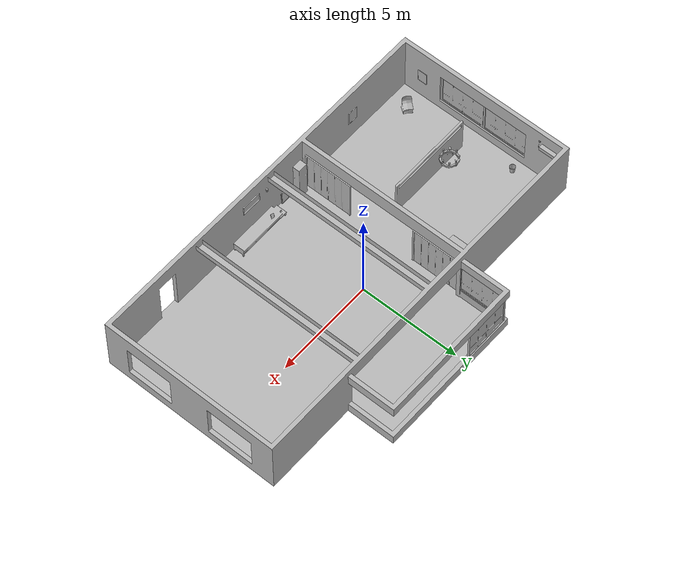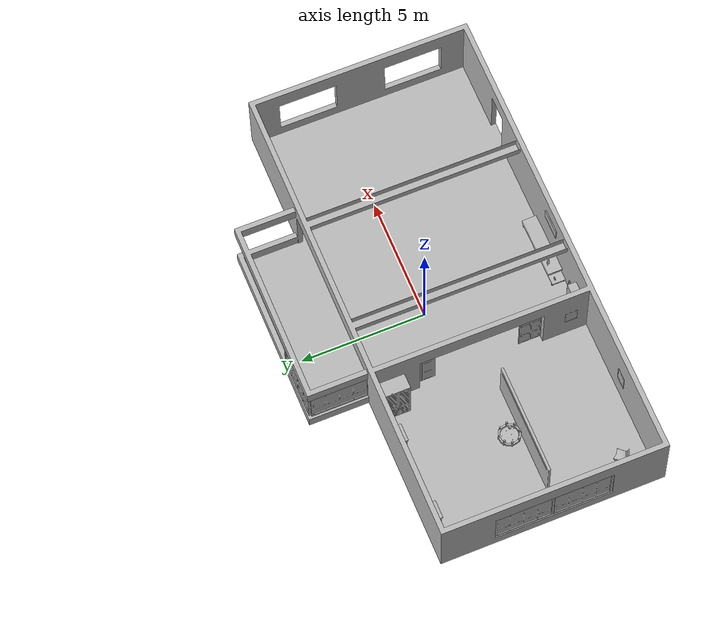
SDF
<sdf version="1.7">
 <world name="default">
  <model name="AirconditionerA_01_001">
   <static>1</static>
   <frame name="aws_robomaker_residential_AirconditionerA_01::__model__" attached_to="aws_robomaker_residential_AirconditionerA_01::link">
    <pose relative_to="__model__">0 0 0 0 -0 0</pose>
   </frame>
   <link name="aws_robomaker_residential_AirconditionerA_01::link">
    <inertial><mass>1</mass></inertial>
    <collision name="collision">
     <geometry>
      <mesh>
       <uri>model://aws_robomaker_residential_AirconditionerA_01/meshes/aws_AirconditionerA_01_collision.DAE</uri>
       <scale>1 1 1</scale>
      </mesh>
     </geometry>
    </collision>
    <visual name="visual">
     <geometry>
      <mesh>
       <uri>model://aws_robomaker_residential_AirconditionerA_01/meshes/aws_AirconditionerA_01_visual.DAE</uri>
      </mesh>
     </geometry>
     <meta><layer>1</layer></meta>
    </visual>
    <pose relative_to="aws_robomaker_residential_AirconditionerA_01::__model__">0 0 0 0 -0 0</pose>
   </link>
   <static>1</static>
   <pose>-9.19941 2.41123 2.08454 0 -0 0</pose>
  </model>
  <model name="AirconditionerB_01_001">
   <static>1</static>
   <frame name="aws_robomaker_residential_AirconditionerB_01::__model__" attached_to="aws_robomaker_residential_AirconditionerB_01::link">
    <pose relative_to="__model__">0 0 0 0 -0 0</pose>
   </frame>
   <link name="aws_robomaker_residential_AirconditionerB_01::link">
    <inertial><mass>1</mass></inertial>
    <collision name="collision">
     <geometry>
      <mesh>
       <uri>model://aws_robomaker_residential_AirconditionerB_01/meshes/aws_AirconditionerB_01_collision.DAE</uri>
       <scale>1 1 1</scale>
      </mesh>
     </geometry>
    </collision>
    <visual name="visual">
     <geometry>
      <mesh>
       <uri>model://aws_robomaker_residential_AirconditionerB_01/meshes/aws_AirconditionerB_01_visual.DAE</uri>
      </mesh>
     </geometry>
     <meta><layer>1</layer></meta>
    </visual>
    <pose relative_to="aws_robomaker_residential_AirconditionerB_01::__model__">0 0 0 0 -0 0</pose>
   </link>
   <pose>-2.00466 -5.22661 0.003485 0 -0 0</pose>
  </model>
  <model name="NightStand_01_001">
   <static>1</static>
   <frame name="aws_robomaker_residential_NightStand_01::__model__" attached_to="aws_robomaker_residential_NightStand_01::link">
    <pose relative_to="__model__">0 0 0 0 -0 0</pose>
   </frame>
   <link name="aws_robomaker_residential_NightStand_01::link">
    <inertial>
     <mass>13.6</mass>
     <inertia><ixx>0.6165</ixx><ixy>0</ixy><ixz>0</ixz><iyy>1.29664</iyy><iyz>0</iyz><izz>0.7706</izz></inertia>
    </inertial>
    <collision name="collision">
     <geometry>
      <mesh>
       <uri>model://aws_robomaker_residential_NightStand_01/meshes/aws_NightStand_01_collision.DAE</uri>
       <scale>1 1 1</scale>
      </mesh>
     </geometry>
    </collision>
    <visual name="visual">
     <geometry>
      <mesh><uri>model://aws_robomaker_residential_NightStand_01/meshes/aws_NightStand_01_visual.DAE</uri></mesh>
     </geometry>
     <meta><layer>1</layer></meta>
    </visual>
    <pose relative_to="aws_robomaker_residential_NightStand_01::__model__">0 0 0 0 -0 0</pose>
   </link>
   <static>1</static>
   <pose>-7.72551 2.86042 0.005258 -2e-06 0 0</pose>
  </model>
  <model name="NightStand_01_002">
   <static>1</static>
   <frame name="aws_robomaker_residential_NightStand_01::__model__" attached_to="aws_robomaker_residential_NightStand_01::link">
    <pose relative_to="__model__">0 0 0 0 -0 0</pose>
   </frame>
   <link name="aws_robomaker_residential_NightStand_01::link">
    <inertial>
     <mass>13.6</mass>
     <inertia><ixx>0.6165</ixx><ixy>0</ixy><ixz>0</ixz><iyy>1.29664</iyy><iyz>0</iyz><izz>0.7706</izz></inertia>
    </inertial>
    <collision name="collision">
     <geometry>
      <mesh>
       <uri>model://aws_robomaker_residential_NightStand_01/meshes/aws_NightStand_01_collision.DAE</uri>
       <scale>1 1 1</scale>
      </mesh>
     </geometry>
    </collision>
    <visual name="visual">
     <geometry>
      <mesh><uri>model://aws_robomaker_residential_NightStand_01/meshes/aws_NightStand_01_visual.DAE</uri></mesh>
     </geometry>
     <meta><layer>1</layer></meta>
    </visual>
    <pose relative_to="aws_robomaker_residential_NightStand_01::__model__">0 0 0 0 -0 0</pose>
   </link>
   <static>1</static>
   <pose>-4.40734 2.86042 0.005256 0 2e-06 0</pose>
  </model>
  <model name="ChairD_01_003">
   <static>1</static>
   <frame name="aws_robomaker_residential_ChairD_01::__model__" attached_to="aws_robomaker_residential_ChairD_01::link">
    <pose relative_to="__model__">0 0 0 0 -0 0</pose>
   </frame>
   <link name="aws_robomaker_residential_ChairD_01::link">
    <inertial>
     <mass>4.5</mass>
     <inertia><ixy>0</ixy><ixz>0</ixz><iyz>0</iyz><ixx>0.217</ixx><iyy>0.217</iyy><izz>0.067</izz></inertia>
    </inertial>
    <collision name="collision">
     <geometry>
      <mesh>
       <uri>model://aws_robomaker_residential_ChairD_01/meshes/aws_ChairD_01_collision.DAE</uri>
       <scale>1 1 1</scale>
      </mesh>
     </geometry>
    </collision>
    <visual name="visual">
     <geometry>
      <mesh><uri>model://aws_robomaker_residential_ChairD_01/meshes/aws_ChairD_01_visual.DAE</uri></mesh>
     </geometry>
     <meta><layer>1</layer></meta>
    </visual>
    <pose relative_to="aws_robomaker_residential_ChairD_01::__model__">0 0 0 0 -0 0</pose>
   </link>
   <pose>-8.27078 -4.50446 0 0 -0 0.869673</pose>
  </model>
  <model name="Chandelier_01_002">
   <static>1</static>
   <frame name="aws_robomaker_residential_Chandelier_01::__model__" attached_to="aws_robomaker_residential_Chandelier_01::link">
    <pose relative_to="__model__">0 0 0 0 -0 0</pose>
   </frame>
   <link name="aws_robomaker_residential_Chandelier_01::link">
    <inertial><mass>1</mass></inertial>
    <collision name="collision">
     <geometry>
      <mesh>
       <uri>model://aws_robomaker_residential_Chandelier_01/meshes/aws_Chandelier_01_collision.DAE</uri>
       <scale>1 1 1</scale>
      </mesh>
     </geometry>
    </collision>
    <visual name="visual">
     <geometry>
      <mesh><uri>model://aws_robomaker_residential_Chandelier_01/meshes/aws_Chandelier_01_visual.DAE</uri></mesh>
     </geometry>
     <meta><layer>2</layer></meta>
    </visual>
    <pose relative_to="aws_robomaker_residential_Chandelier_01::__model__">0 0 0 0 -0 0</pose>
   </link>
   <static>1</static>
   <pose>-6.45106 -0.69204 1.81 0 -0 0</pose>
  </model>
  <model name="FoldingDoor_01_001">
   <static>1</static>
   <frame name="aws_robomaker_residential_FoldingDoor_01::__model__" attached_to="aws_robomaker_residential_FoldingDoor_01::link">
    <pose relative_to="__model__">0 0 0 0 -0 0</pose>
   </frame>
   <link name="aws_robomaker_residential_FoldingDoor_01::link">
    <inertial><mass>1</mass></inertial>
    <collision name="collision">
     <geometry>
      <mesh>
       <uri>model://aws_robomaker_residential_FoldingDoor_01/meshes/aws_FoldingDoor_01_collision.DAE</uri>
       <scale>1 1 1</scale>
      </mesh>
     </geometry>
    </collision>
    <visual name="visual">
     <geometry>
      <mesh><uri>model://aws_robomaker_residential_FoldingDoor_01/meshes/aws_FoldingDoor_01_visual.DAE</uri></mesh>
     </geometry>
     <meta><layer>2</layer></meta>
    </visual>
    <pose relative_to="aws_robomaker_residential_FoldingDoor_01::__model__">0 0 0 0 -0 0</pose>
   </link>
   <static>1</static>
   <pose>-2.4611 1.84422 0.041881 0 -0 0</pose>
  </model>
  <model name="FoldingDoor_01_002">
   <static>1</static>
   <frame name="aws_robomaker_residential_FoldingDoor_01::__model__" attached_to="aws_robomaker_residential_FoldingDoor_01::link">
    <pose relative_to="__model__">0 0 0 0 -0 0</pose>
   </frame>
   <link name="aws_robomaker_residential_FoldingDoor_01::link">
    <inertial><mass>1</mass></inertial>
    <collision name="collision">
     <geometry>
      <mesh>
       <uri>model://aws_robomaker_residential_FoldingDoor_01/meshes/aws_FoldingDoor_01_collision.DAE</uri>
       <scale>1 1 1</scale>
      </mesh>
     </geometry>
    </collision>
    <visual name="visual">
     <geometry>
      <mesh><uri>model://aws_robomaker_residential_FoldingDoor_01/meshes/aws_FoldingDoor_01_visual.DAE</uri></mesh>
     </geometry>
     <meta><layer>2</layer></meta>
    </visual>
    <pose relative_to="aws_robomaker_residential_FoldingDoor_01::__model__">0 0 0 0 -0 0</pose>
   </link>
   <static>1</static>
   <pose>-2.4611 -4.05332 0.041881 0 -0 0</pose>
  </model>
  <model name="HouseWallB_01_001">
   <static>1</static>
   <frame name="aws_robomaker_residential_HouseWallB_01::__model__" attached_to="aws_robomaker_residential_HouseWallB_01::link">
    <pose relative_to="__model__">0 0 0 0 -0 0</pose>
   </frame>
   <link name="aws_robomaker_residential_HouseWallB_01::link">
    <inertial><mass>1</mass></inertial>
    <collision name="collision">
     <geometry>
      <mesh>
       <uri>model://aws_robomaker_residential_HouseWallB_01/meshes/aws_HouseWallB_01_collision.DAE</uri>
       <scale>1 1 1</scale>
      </mesh>
     </geometry>
    </collision>
    <visual name="visual">
     <geometry>
      <mesh><uri>model://aws_robomaker_residential_HouseWallB_01/meshes/aws_HouseWallB_01_visual.DAE</uri></mesh>
     </geometry>
     <meta><layer>2</layer></meta>
    </visual>
    <pose relative_to="aws_robomaker_residential_HouseWallB_01::__model__">0 0 0 0 -0 0</pose>
   </link>
   <static>1</static>
  </model>
  <model name="FloorB_01_001">
   <static>1</static>
   <frame name="aws_robomaker_residential_FloorB_01::__model__" attached_to="aws_robomaker_residential_FloorB_01::link">
    <pose relative_to="__model__">0 0 0 0 -0 0</pose>
   </frame>
   <link name="aws_robomaker_residential_FloorB_01::link">
    <inertial><mass>100</mass></inertial>
    <collision name="collision">
     <geometry>
      <mesh>
       <uri>model://aws_robomaker_residential_FloorB_01/meshes/aws_FloorB_01_collision.DAE</uri>
       <scale>1 1 0.9</scale>
      </mesh>
     </geometry>
     <surface><friction><ode><mu>100</mu><mu2>50</mu2></ode></friction></surface>
    </collision>
    <visual name="visual">
     <geometry>
      <mesh><uri>model://aws_robomaker_residential_FloorB_01/meshes/aws_FloorB_01_visual.DAE</uri></mesh>
     </geometry>
     <meta><layer>1</layer></meta>
    </visual>
    <pose relative_to="aws_robomaker_residential_FloorB_01::__model__">0 0 0 0 -0 0</pose>
   </link>
   <static>1</static>
  </model>
  <model name="LightC_01_002">
   <static>1</static>
   <frame name="aws_robomaker_residential_LightC_01::__model__" attached_to="aws_robomaker_residential_LightC_01::link">
    <pose relative_to="__model__">0 0 0 0 -0 0</pose>
   </frame>
   <link name="aws_robomaker_residential_LightC_01::link">
    <inertial><mass>1</mass></inertial>
    <collision name="collision">
     <geometry>
      <mesh>
       <uri>model://aws_robomaker_residential_LightC_01/meshes/aws_LightC_01_collision.DAE</uri>
       <scale>1 1 1</scale>
      </mesh>
     </geometry>
    </collision>
    <visual name="visual">
     <geometry>
      <mesh><uri>model://aws_robomaker_residential_LightC_01/meshes/aws_LightC_01_visual.DAE</uri></mesh>
     </geometry>
     <meta><layer>2</layer></meta>
    </visual>
    <pose relative_to="aws_robomaker_residential_LightC_01::__model__">0 0 0 0 -0 0</pose>
   </link>
   <static>1</static>
   <pose>-0.138245 -5.44437 2 0 -0 0</pose>
  </model>
  <model name="PortraitA_01">
   <static>1</static>
   <frame name="aws_robomaker_residential_PortraitA_01::__model__" attached_to="aws_robomaker_residential_PortraitA_01::link">
    <pose relative_to="__model__">0 0 0 0 -0 0</pose>
   </frame>
   <link name="aws_robomaker_residential_PortraitA_01::link">
    <inertial><mass>1</mass></inertial>
    <collision name="collision">
     <geometry>
      <mesh>
       <uri>model://aws_robomaker_residential_PortraitA_01/meshes/aws_PortraitA_01_collision.DAE</uri>
       <scale>1 1 1</scale>
      </mesh>
     </geometry>
    </collision>
    <visual name="visual">
     <geometry>
      <mesh><uri>model://aws_robomaker_residential_PortraitA_01/meshes/aws_PortraitA_01_visual.DAE</uri></mesh>
     </geometry>
     <meta><layer>2</layer></meta>
    </visual>
    <pose relative_to="aws_robomaker_residential_PortraitA_01::__model__">0 0 0 0 -0 0</pose>
   </link>
   <static>1</static>
   <pose>-2.71236 -4.81754 1 0 -0 1.5668</pose>
  </model>
  <model name="PortraitB_01">
   <static>1</static>
   <frame name="aws_robomaker_residential_PortraitB_01::__model__" attached_to="aws_robomaker_residential_PortraitB_01::link">
    <pose relative_to="__model__">0 0 0 0 -0 0</pose>
   </frame>
   <link name="aws_robomaker_residential_PortraitB_01::link">
    <inertial><mass>1</mass></inertial>
    <collision name="collision">
     <geometry>
      <mesh>
       <uri>model://aws_robomaker_residential_PortraitB_01/meshes/aws_PortraitB_01_collision.DAE</uri>
       <scale>1 1 1</scale>
      </mesh>
     </geometry>
    </collision>
    <visual name="visual">
     <geometry>
      <mesh><uri>model://aws_robomaker_residential_PortraitB_01/meshes/aws_PortraitB_01_visual.DAE</uri></mesh>
     </geometry>
     <meta><layer>2</layer></meta>
    </visual>
    <pose relative_to="aws_robomaker_residential_PortraitB_01::__model__">0 0 0 0 -0 0</pose>
   </link>
   <static>1</static>
   <pose>-1.27968 -5.42963 0 -0.076901 0 -3.11672</pose>
  </model>
  <model name="PortraitC_01">
   <static>1</static>
   <frame name="aws_robomaker_residential_PortraitC_01::__model__" attached_to="aws_robomaker_residential_PortraitC_01::link">
    <pose relative_to="__model__">0 0 0 0 -0 0</pose>
   </frame>
   <link name="aws_robomaker_residential_PortraitC_01::link">
    <inertial><mass>1</mass></inertial>
    <collision name="collision">
     <geometry>
      <mesh>
       <uri>model://aws_robomaker_residential_PortraitC_01/meshes/aws_PortraitC_01_collision.DAE</uri>
       <scale>1 1 1</scale>
      </mesh>
     </geometry>
    </collision>
    <visual name="visual">
     <geometry>
      <mesh><uri>model://aws_robomaker_residential_PortraitC_01/meshes/aws_PortraitC_01_visual.DAE</uri></mesh>
     </geometry>
     <meta><layer>2</layer></meta>
    </visual>
    <pose relative_to="aws_robomaker_residential_PortraitC_01::__model__">0 0 0 0 -0 0</pose>
   </link>
   <static>1</static>
   <pose>-9.2949 -4.52608 1 0 -0 1.55473</pose>
  </model>
  <model name="PortraitD_01">
   <static>1</static>
   <frame name="aws_robomaker_residential_PortraitD_01::__model__" attached_to="aws_robomaker_residential_PortraitD_01::link">
    <pose relative_to="__model__">0 0 0 0 -0 0</pose>
   </frame>
   <link name="aws_robomaker_residential_PortraitD_01::link">
    <inertial><mass>1.5</mass></inertial>
    <collision name="collision">
     <geometry>
      <mesh>
       <uri>model://aws_robomaker_residential_PortraitD_01/meshes/aws_PortraitD_01_collision.DAE</uri>
       <scale>1 1 1</scale>
      </mesh>
     </geometry>
    </collision>
    <visual name="visual">
     <geometry>
      <mesh><uri>model://aws_robomaker_residential_PortraitD_01/meshes/aws_PortraitD_01_visual.DAE</uri></mesh>
     </geometry>
     <meta><layer>2</layer></meta>
    </visual>
    <pose relative_to="aws_robomaker_residential_PortraitD_01::__model__">0 0 0 0 -0 0</pose>
   </link>
   <static>1</static>
   <pose>0.789763 -5.47872 1.8 0 -0 3.13853</pose>
  </model>
  <model name="PortraitE_01">
   <static>1</static>
   <frame name="aws_robomaker_residential_PortraitE_01::__model__" attached_to="aws_robomaker_residential_PortraitE_01::link">
    <pose relative_to="__model__">0 0 0 0 -0 0</pose>
   </frame>
   <link name="aws_robomaker_residential_PortraitE_01::link">
    <inertial><mass>1</mass></inertial>
    <collision name="collision">
     <geometry>
      <mesh>
       <uri>model://aws_robomaker_residential_PortraitE_01/meshes/aws_PortraitE_01_collision.DAE</uri>
       <scale>1 1 1</scale>
      </mesh>
     </geometry>
    </collision>
    <visual name="visual">
     <geometry>
      <mesh><uri>model://aws_robomaker_residential_PortraitE_01/meshes/aws_PortraitE_01_visual.DAE</uri></mesh>
     </geometry>
     <meta><layer>2</layer></meta>
    </visual>
    <pose relative_to="aws_robomaker_residential_PortraitE_01::__model__">0 0 0 0 -0 0</pose>
   </link>
   <static>1</static>
   <pose>-5.77309 -5.49247 1 0 -0 3.13263</pose>
  </model>
  <model name="PortraitE_02">
   <static>1</static>
   <frame name="aws_robomaker_residential_PortraitE_02::__model__" attached_to="aws_robomaker_residential_PortraitE_02::link">
    <pose relative_to="__model__">0 0 0 0 -0 0</pose>
   </frame>
   <link name="aws_robomaker_residential_PortraitE_02::link">
    <inertial><mass>1</mass></inertial>
    <collision name="collision">
     <geometry>
      <mesh>
       <uri>model://aws_robomaker_residential_PortraitE_02/meshes/aws_PortraitE_01_collision.DAE</uri>
       <scale>1 1 1</scale>
      </mesh>
     </geometry>
    </collision>
    <visual name="visual">
     <geometry>
      <mesh><uri>model://aws_robomaker_residential_PortraitE_02/meshes/aws_PortraitE_01_visual.DAE</uri></mesh>
     </geometry>
     <meta><layer>2</layer></meta>
    </visual>
    <pose relative_to="aws_robomaker_residential_PortraitE_02::__model__">0 0 0 0 -0 0</pose>
   </link>
   <static>1</static>
   <pose>-6.19302 -1.59021 0.3 0 -0 0.00429</pose>
  </model>
  <model name="DeskPortraitA_01">
   <static>1</static>
   <frame name="aws_robomaker_residential_DeskPortraitA_01::__model__" attached_to="aws_robomaker_residential_DeskPortraitA_01::link">
    <pose relative_to="__model__">0 0 0 0 -0 0</pose>
   </frame>
   <link name="aws_robomaker_residential_DeskPortraitA_01::link">
    <inertial>
     <mass>1</mass>
     <inertia><ixx>0.0835</ixx><ixy>0</ixy><ixz>0</ixz><iyy>0.16</iyy><iyz>0</iyz><izz>0.08347</izz></inertia>
    </inertial>
    <collision name="collision">
     <geometry>
      <mesh>
       <uri>model://aws_robomaker_residential_DeskPortraitA_01/meshes/aws_DeskPortraitA_01_collision.DAE</uri>
       <scale>1 1 1</scale>
      </mesh>
     </geometry>
    </collision>
    <visual name="visual">
     <geometry>
      <mesh>
       <uri>model://aws_robomaker_residential_DeskPortraitA_01/meshes/aws_DeskPortraitA_01_visual.DAE</uri>
      </mesh>
     </geometry>
     <meta><layer>1</layer></meta>
    </visual>
    <pose relative_to="aws_robomaker_residential_DeskPortraitA_01::__model__">0 0 0 0 -0 0</pose>
   </link>
   <pose>-0.036864 -5.11016 0.49866 0 -0 2.92778</pose>
  </model>
  <model name="DeskPortraitD_02">
   <static>1</static>
   <frame name="aws_robomaker_residential_DeskPortraitD_02::__model__" attached_to="aws_robomaker_residential_DeskPortraitD_02::link">
    <pose relative_to="__model__">0 0 0 0 -0 0</pose>
   </frame>
   <link name="aws_robomaker_residential_DeskPortraitD_02::link">
    <inertial>
     <mass>0.4</mass>
     <inertia><ixx>0.0616</ixx><ixy>0</ixy><ixz>0</ixz><iyy>0.1313</iyy><iyz>0</iyz><izz>0.0803</izz></inertia>
    </inertial>
    <collision name="collision">
     <geometry>
      <mesh>
       <uri>model://aws_robomaker_residential_DeskPortraitD_02/meshes/aws_DeskPortraitD_01_collision.DAE</uri>
       <scale>1 1 1</scale>
      </mesh>
     </geometry>
     <surface>
      <friction><ode><mu>0.7</mu><mu2>0.7</mu2></ode></friction>
      <contact><ode><kd>28500</kd></ode></contact>
     </surface>
    </collision>
    <visual name="visual">
     <geometry>
      <mesh>
       <uri>model://aws_robomaker_residential_DeskPortraitD_02/meshes/aws_DeskPortraitD_01_visual.DAE</uri>
      </mesh>
     </geometry>
     <meta><layer>1</layer></meta>
    </visual>
    <pose relative_to="aws_robomaker_residential_DeskPortraitD_02::__model__">0 0 0 0 -0 0</pose>
   </link>
   <pose>-0.589211 -5.10989 0.192145 -1.5e-05 -0.000174 -3.11254</pose>
  </model>
  <model name="Trash_01_002">
   <static>1</static>
   <frame name="aws_robomaker_residential_Trash_01::__model__" attached_to="aws_robomaker_residential_Trash_01::link">
    <pose relative_to="__model__">0 0 0 0 -0 0</pose>
   </frame>
   <link name="aws_robomaker_residential_Trash_01::link">
    <inertial>
     <mass>0.1</mass>
     <inertia><ixy>0</ixy><ixz>0</ixz><iyz>0</iyz><ixx>0.05288</ixx><iyy>0.05288</iyy><izz>0.09132</izz></inertia>
    </inertial>
    <collision name="collision">
     <geometry>
      <mesh>
       <uri>model://aws_robomaker_residential_Trash_01/meshes/aws_Trash_01_collision.DAE</uri>
       <scale>1 1 1</scale>
      </mesh>
     </geometry>
    </collision>
    <visual name="visual">
     <geometry>
      <mesh><uri>model://aws_robomaker_residential_Trash_01/meshes/aws_Trash_01_visual.DAE</uri></mesh>
     </geometry>
     <meta><layer>1</layer></meta>
    </visual>
    <pose relative_to="aws_robomaker_residential_Trash_01::__model__">0 0 0 0 -0 0</pose>
   </link>
   <pose>-8.70415 1.00058 0.011 0 -0 0</pose>
  </model>
  <model name="TVCabinet_01_001">
   <static>1</static>
   <frame name="aws_robomaker_residential_TVCabinet_01::__model__" attached_to="aws_robomaker_residential_TVCabinet_01::link">
    <pose relative_to="__model__">0 0 0 0 -0 0</pose>
   </frame>
   <link name="aws_robomaker_residential_TVCabinet_01::link">
    <inertial>
     <mass>59.2</mass>
     <inertia><ixx>30.4</ixx><ixy>0</ixy><ixz>0</ixz><iyy>2.56</iyy><iyz>0</iyz><izz>31.38</izz></inertia>
    </inertial>
    <collision name="collision">
     <geometry>
      <mesh>
       <uri>model://aws_robomaker_residential_TVCabinet_01/meshes/aws_TVCabinet_01_collision.DAE</uri>
       <scale>1 1 1</scale>
      </mesh>
     </geometry>
    </collision>
    <visual name="visual">
     <geometry>
      <mesh><uri>model://aws_robomaker_residential_TVCabinet_01/meshes/aws_TVCabinet_01_visual.DAE</uri></mesh>
     </geometry>
     <meta><layer>1</layer></meta>
    </visual>
    <pose relative_to="aws_robomaker_residential_TVCabinet_01::__model__">0 0 0 0 -0 0</pose>
   </link>
   <static>1</static>
   <pose>0.629509 -5.18358 -0.017049 0 -0 1.5792</pose>
  </model>
  <model name="RoomWall_01_001">
   <static>1</static>
   <frame name="aws_robomaker_residential_RoomWall_01::__model__" attached_to="aws_robomaker_residential_RoomWall_01::link">
    <pose relative_to="__model__">0 0 0 0 -0 0</pose>
   </frame>
   <link name="aws_robomaker_residential_RoomWall_01::link">
    <inertial><mass>100</mass></inertial>
    <collision name="collision">
     <geometry>
      <mesh>
       <uri>model://aws_robomaker_residential_RoomWall_01/meshes/aws_RoomWall_01_collision.DAE</uri>
       <scale>1 1 1</scale>
      </mesh>
     </geometry>
    </collision>
    <visual name="visual">
     <geometry>
      <mesh><uri>model://aws_robomaker_residential_RoomWall_01/meshes/aws_RoomWall_01_visual.DAE</uri></mesh>
     </geometry>
     <meta><layer>2</layer></meta>
    </visual>
    <pose relative_to="aws_robomaker_residential_RoomWall_01::__model__">0 0 0 0 -0 0</pose>
   </link>
   <static>1</static>
   <pose>-6.09755 -1.49618 0.028124 0 -0 0</pose>
  </model>
  <model name="Wardrobe_01_001">
   <static>1</static>
   <frame name="aws_robomaker_residential_Wardrobe_01::__model__" attached_to="aws_robomaker_residential_Wardrobe_01::link">
    <pose relative_to="__model__">0 0 0 0 -0 0</pose>
   </frame>
   <link name="aws_robomaker_residential_Wardrobe_01::link">
    <inertial><mass>51.7</mass></inertial>
    <collision name="collision">
     <geometry>
      <mesh>
       <uri>model://aws_robomaker_residential_Wardrobe_01/meshes/aws_Wardrobe_01_collision.DAE</uri>
       <scale>1 1 1</scale>
      </mesh>
     </geometry>
    </collision>
    <visual name="visual">
     <geometry>
      <mesh><uri>model://aws_robomaker_residential_Wardrobe_01/meshes/aws_Wardrobe_01_visual.DAE</uri></mesh>
     </geometry>
     <meta><layer>1</layer></meta>
    </visual>
    <pose relative_to="aws_robomaker_residential_Wardrobe_01::__model__">0 0 0 0 -0 0</pose>
   </link>
   <static>1</static>
   <pose>-3.14671 2.4762 0.000704 0 0 -1.56967</pose>
  </model>
  <model name="RoomWindow_01_001">
   <static>1</static>
   <frame name="aws_robomaker_residential_RoomWindow_01::__model__" attached_to="aws_robomaker_residential_RoomWindow_01::link">
    <pose relative_to="__model__">0 0 0 0 -0 0</pose>
   </frame>
   <link name="aws_robomaker_residential_RoomWindow_01::link">
    <inertial><mass>1</mass></inertial>
    <collision name="collision">
     <geometry>
      <mesh>
       <uri>model://aws_robomaker_residential_RoomWindow_01/meshes/aws_RoomWindow_01_collision.DAE</uri>
       <scale>1 1 1</scale>
      </mesh>
     </geometry>
    </collision>
    <visual name="visual">
     <geometry>
      <mesh><uri>model://aws_robomaker_residential_RoomWindow_01/meshes/aws_RoomWindow_01_visual.DAE</uri></mesh>
     </geometry>
     <meta><layer>2</layer></meta>
    </visual>
    <pose relative_to="aws_robomaker_residential_RoomWindow_01::__model__">0 0 0 0 -0 0</pose>
   </link>
   <static>1</static>
   <pose>-9.4186 -0.026285 0.502739 0 -0 0</pose>
  </model>
  <model name="RoomWindow_01_002">
   <static>1</static>
   <frame name="aws_robomaker_residential_RoomWindow_01::__model__" attached_to="aws_robomaker_residential_RoomWindow_01::link">
    <pose relative_to="__model__">0 0 0 0 -0 0</pose>
   </frame>
   <link name="aws_robomaker_residential_RoomWindow_01::link">
    <inertial><mass>1</mass></inertial>
    <collision name="collision">
     <geometry>
      <mesh>
       <uri>model://aws_robomaker_residential_RoomWindow_01/meshes/aws_RoomWindow_01_collision.DAE</uri>
       <scale>1 1 1</scale>
      </mesh>
     </geometry>
    </collision>
    <visual name="visual">
     <geometry>
      <mesh><uri>model://aws_robomaker_residential_RoomWindow_01/meshes/aws_RoomWindow_01_visual.DAE</uri></mesh>
     </geometry>
     <meta><layer>2</layer></meta>
    </visual>
    <pose relative_to="aws_robomaker_residential_RoomWindow_01::__model__">0 0 0 0 -0 0</pose>
   </link>
   <static>1</static>
   <pose>-9.4186 -2.37409 0.502739 0 -0 0</pose>
  </model>
  <model name="RoomWindow_01_008">
   <static>1</static>
   <frame name="aws_robomaker_residential_RoomWindow_01::__model__" attached_to="aws_robomaker_residential_RoomWindow_01::link">
    <pose relative_to="__model__">0 0 0 0 -0 0</pose>
   </frame>
   <link name="aws_robomaker_residential_RoomWindow_01::link">
    <inertial><mass>1</mass></inertial>
    <collision name="collision">
     <geometry>
      <mesh>
       <uri>model://aws_robomaker_residential_RoomWindow_01/meshes/aws_RoomWindow_01_collision.DAE</uri>
       <scale>1 1 1</scale>
      </mesh>
     </geometry>
    </collision>
    <visual name="visual">
     <geometry>
      <mesh><uri>model://aws_robomaker_residential_RoomWindow_01/meshes/aws_RoomWindow_01_visual.DAE</uri></mesh>
     </geometry>
     <meta><layer>2</layer></meta>
    </visual>
    <pose relative_to="aws_robomaker_residential_RoomWindow_01::__model__">0 0 0 0 -0 0</pose>
   </link>
   <static>1</static>
   <pose>-1.19934 5.60069 0.502739 0 0 -1.56627</pose>
  </model>
  <model name="RoomWindow_01_009">
   <static>1</static>
   <frame name="aws_robomaker_residential_RoomWindow_01::__model__" attached_to="aws_robomaker_residential_RoomWindow_01::link">
    <pose relative_to="__model__">0 0 0 0 -0 0</pose>
   </frame>
   <link name="aws_robomaker_residential_RoomWindow_01::link">
    <inertial><mass>1</mass></inertial>
    <collision name="collision">
     <geometry>
      <mesh>
       <uri>model://aws_robomaker_residential_RoomWindow_01/meshes/aws_RoomWindow_01_collision.DAE</uri>
       <scale>1 1 1</scale>
      </mesh>
     </geometry>
    </collision>
    <visual name="visual">
     <geometry>
      <mesh><uri>model://aws_robomaker_residential_RoomWindow_01/meshes/aws_RoomWindow_01_visual.DAE</uri></mesh>
     </geometry>
     <meta><layer>2</layer></meta>
    </visual>
    <pose relative_to="aws_robomaker_residential_RoomWindow_01::__model__">0 0 0 0 -0 0</pose>
   </link>
   <static>1</static>
   <pose>-2.39662 4.38761 0.502739 0 -0 0</pose>
  </model>
 </world>
</sdf>
